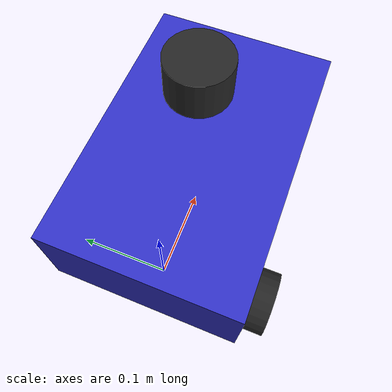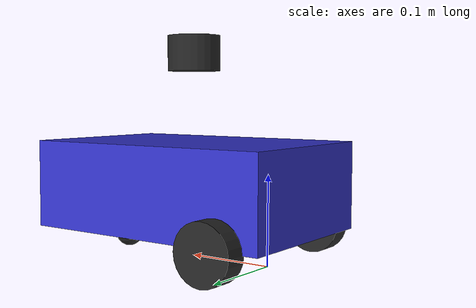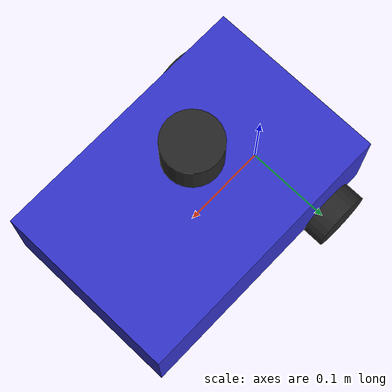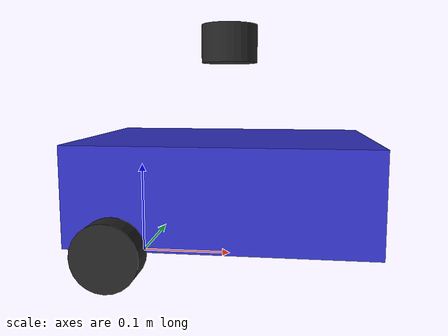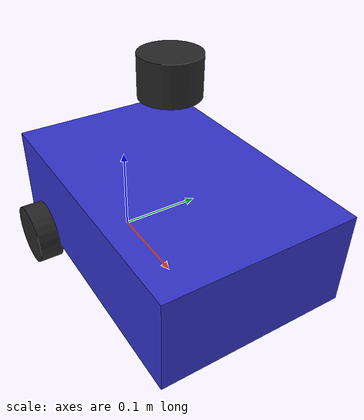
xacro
<?xml version="1.0"?>
<robot xmlns:xacro="http://www.ros.org/wiki/xacro" name="gigi"> <!-- allows for use of xacro -->

  <!-- dimensions of hardware, update once you get kit; function like global variables -->
  <xacro:property name="chassis_length" value="0.30"/>
  <xacro:property name="chassis_width"  value="0.20"/>
  <xacro:property name="chassis_height" value="0.10"/>
  <xacro:property name="wheel_radius"   value="0.033"/>
  <xacro:property name="wheel_width"    value="0.026"/>
  <xacro:property name="wheel_track"    value="0.22"/>   <!-- distance between wheel centers -->
  <xacro:property name="caster_radius"  value="${wheel_radius/2}"/>

  <!-- here are all of the includes that need to be stitched together when Gazebo is launched-->
  <xacro:include filename="inertial_macros.xacro"/> <!-- pulling in the inertial macros file, so xacro can stitch them together-->
  <xacro:include filename="gazebo_pluggins.xacro"/> <!-- this references the file with diff drive and sensor pluggins-->
  <xacro:include filename="lidar.xacro"/> <!-- lidar sensor file-->

  <!-- material colors -->
  <material name="blue"><color rgba="0.2 0.2 0.8 1"/></material>
  <material name="dark"><color rgba="0.15 0.15 0.15 1"/></material>

  <!-- base_footprint: the robot's shadow on the ground -->
  <link name="base_footprint"/>

  <!-- base_link: the chassis-->
  <link name="base_link">
    <visual>
      <origin xyz="0.10 0 ${chassis_height/2}" rpy="0 0 0"/> <!-- we put the chasis at axis height-->
      <geometry>
        <box size="${chassis_length} ${chassis_width} ${chassis_height}"/>
      </geometry>
      <material name="blue"/>
    </visual>
     <collision>
        <origin xyz="0.10 0 ${chassis_height/2}" rpy="0 0 0"/>
        <geometry><box size="${chassis_length} ${chassis_width} ${chassis_height}"/></geometry>
    </collision>
    <xacro:inertial_box mass="1.0" x="${chassis_length}" y="${chassis_width}" z="${chassis_height}">
        <origin xyz="0.10 0 ${chassis_height/2}" rpy="0 0 0"/>
    </xacro:inertial_box>
  </link>

  <!-- link between base_footprint and base_joint -->
  <joint name="base_joint" type="fixed">
    <parent link="base_footprint"/>
    <child link="base_link"/>
    <origin xyz="0 0 ${wheel_radius}" rpy="0 0 0"/>
  </joint>

  <!-- creating a macro template for a wheel that can be re-used for left and right wheels-->
  <xacro:macro name="wheel" params="side y_reflect">
    <link name="${side}_wheel">
      <visual>
        <geometry>
          <cylinder radius="${wheel_radius}" length="${wheel_width}"/>
        </geometry>
        <material name="dark"/>
      </visual>
    <collision>
        <geometry><cylinder radius="${wheel_radius}" length="${wheel_width}"/></geometry>
    </collision>
    <xacro:inertial_cylinder mass="0.1" length="${wheel_width}" radius="${wheel_radius}">
        <origin xyz="0 0 0" rpy="0 0 0"/>
    </xacro:inertial_cylinder>
    </link>

    <joint name="${side}_wheel_joint" type="continuous">
      <parent link="base_link"/>
      <child link="${side}_wheel"/>
      <origin xyz="0 ${y_reflect * wheel_track/2} 0" rpy="${-pi/2} 0 0"/>
      <axis xyz="0 0 1"/>
    </joint>
  </xacro:macro>
  <!-- end of wheel template; now you can re-use this code and prevent redundancy -->

  <!-- left_wheel_joint; using template -->
  <xacro:wheel side="left"  y_reflect="1"/>
  <!-- right_wheel_joint; using template -->
  <xacro:wheel side="right" y_reflect="-1"/>

  <!--caster wheel link-->
  <link name="caster">
    <visual>
      <geometry><sphere radius="${caster_radius}"/></geometry>
      <material name="dark"/>
    </visual>
    <collision>
        <geometry><sphere radius="${caster_radius}"/></geometry>
    </collision>
    <xacro:inertial_sphere mass="0.05" radius="${caster_radius}">
        <origin xyz="0 0 0" rpy="0 0 0"/>
    </xacro:inertial_sphere>
  </link>
  <!--caster wheel joint-->
  <joint name="caster_joint" type="fixed">
    <parent link="base_link"/>
    <child link="caster"/>
    <origin xyz="0.20 0 ${-(wheel_radius - caster_radius)}" rpy="0 0 0"/>  <!--sits towards front of chasis-->
  </joint>

</robot>

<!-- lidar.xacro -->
<robot xmlns:xacro="http://www.ros.org/wiki/xacro">

  <!-- adding a link : the LIDAR itself -->
  <link name="laser_frame">
    <visual>
      <geometry><cylinder radius="0.03" length="0.04"/></geometry>
      <material name="dark"/>
    </visual>
    <collision>
      <geometry><cylinder radius="0.03" length="0.04"/></geometry>
    </collision>
    <xacro:inertial_cylinder mass="0.1" length="0.04" radius="0.03">
      <origin xyz="0 0 0" rpy="0 0 0"/>
    </xacro:inertial_cylinder>
  </link>

  <joint name="laser_joint" type="fixed">
    <parent link="base_link"/>
    <child link="laser_frame"/>
    <origin xyz="0.10 0 ${chassis_height/2 + 0.15}" rpy="0 0 0"/> <!-- here we have LIDAR situated forward and up relative to chasis, adjust as needed-->
  </joint>

  <!-- this info will only be accessed by Gazebo, necessary to turn LIDAR from a visualization/description to a functional laser in the simulation-->
  <gazebo reference="laser_joint">
    <preserveFixedJoint>true</preserveFixedJoint>
  </gazebo>

  <gazebo reference="laser_frame">
    <sensor name="laser" type="gpu_lidar">
      <topic>scan</topic>
      <update_rate>10</update_rate> <!-- collecting data ten times per second-->
      <always_on>true</always_on>
      <visualize>true</visualize>
      <lidar>
        <scan>
          <horizontal>
            <samples>360</samples> <!-- one data point taken every degree in a full circle surrounding the bot-->
            <resolution>1</resolution>
            <min_angle>-3.14159</min_angle>
            <max_angle>3.14159</max_angle>
          </horizontal>
          <vertical>
            <samples>1</samples>
            <resolution>1</resolution>
            <min_angle>0</min_angle>
            <max_angle>0</max_angle>
          </vertical>
        </scan>
        <range>
          <min>0.12</min> <!-- in meters, the range the LIDAR scans for objects-->
          <max>12.0</max>
        </range>
      </lidar>
      <gz_frame_id>laser_frame</gz_frame_id>
    </sensor>
  </gazebo>

</robot>
